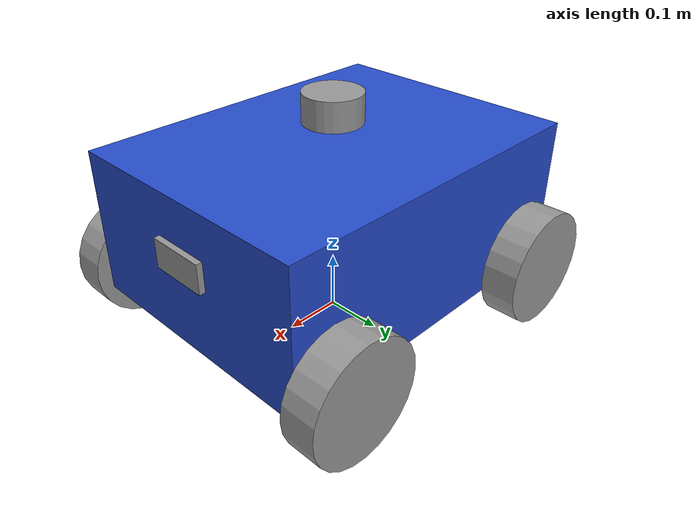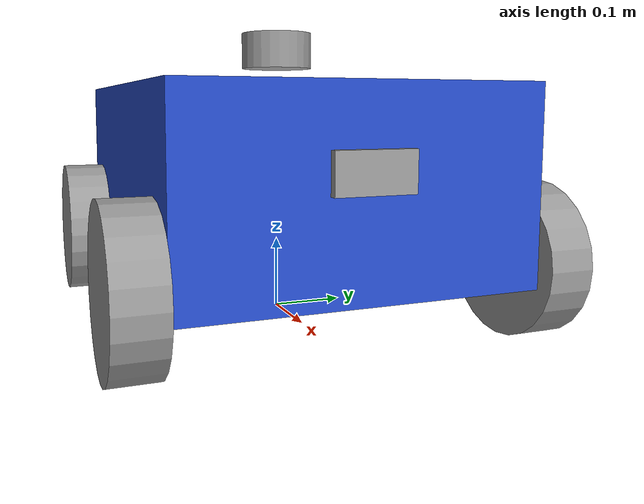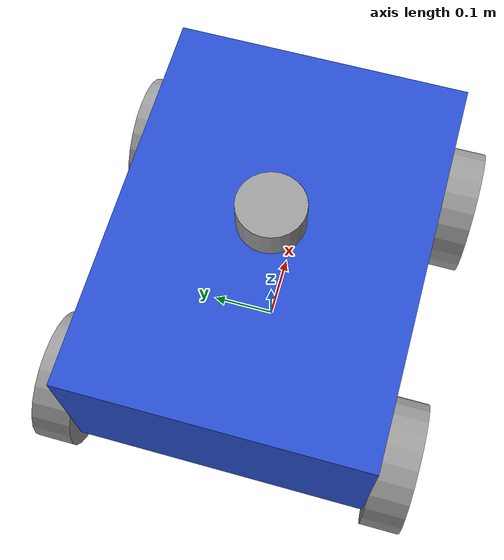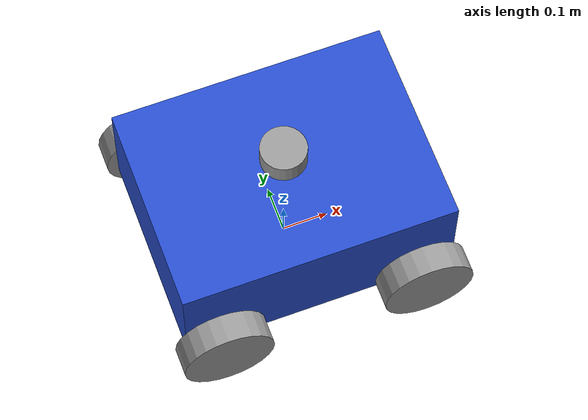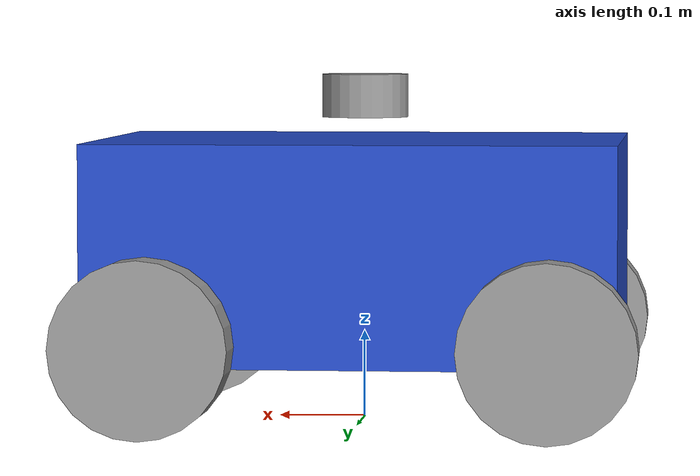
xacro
<?xml version="1.0"?>
<robot name="zippy" xmlns:xacro="https://www.ros.org/wiki/xacro">

    <xacro:arg name="controllers_config_path" default="" />

    <xacro:include filename="materials.xacro" />
    <xacro:include filename="inertia_descriptions.xacro" />
    <xacro:include filename="camera.xacro" />
    <xacro:include filename="lidar.xacro" />
    <xacro:include filename="imu_sensor.xacro" />
    <xacro:include filename="gazebo_plugin.xacro" />
    <xacro:include filename="ros2_hardwareinterface.xacro" />

    <xacro:property name="chassis_length" value="0.6" />
    <xacro:property name="chassis_width" value="0.45" />
    <xacro:property name="chassis_height" value="0.25" />
    <xacro:property name="chassis_mass" value="5.0" />

    <xacro:property name="wheel_radius" value="0.1" />
    <xacro:property name="wheel_thickness" value="0.06" />
    <xacro:property name="wheel_mass" value="0.25" />

    <!-- Distance between left/right wheel centers and front/rear wheel centers -->
    <xacro:property name="track_width" value="0.51" />
    <xacro:property name="wheelbase" value="0.45" />

    <!-- Height of the chassis center above the ground (wheel axle height) -->
    <xacro:property name="chassis_z" value="${wheel_radius}" />

    <link name="zippy">
    </link>
    <link name="base_link">
        <visual>
            <geometry>
                <box size="${chassis_length} ${chassis_width} ${chassis_height}" />
            </geometry>
            <origin xyz="0 0 ${chassis_z}" rpy="0 0 0" />
            <material name="blue" />
        </visual>
        <collision>
            <geometry>
                <box size="${chassis_length} ${chassis_width} ${chassis_height}" />
            </geometry>
            <origin xyz="0 0 ${chassis_z}" rpy="0 0 0" />
        </collision>
        <xacro:box_inertia Mass="${chassis_mass}" x="${chassis_length}" y="${chassis_width}" z="${chassis_height}" arr_xyz="0 0 ${chassis_z}" arr_rpy="0 0 0" />
    </link>

    <xacro:macro name="wheel" params="params">
        <link name="${params}">
            <visual>
                <geometry>
                    <cylinder radius="${wheel_radius}" length="${wheel_thickness}" />
                </geometry>
                <origin xyz="0 0 0" rpy="${pi/2} 0 0"/>
                <material name="grey"/>
            </visual>
            <collision>
                <geometry>
                    <sphere radius="${wheel_radius}"/>
                </geometry>
                <origin xyz="0 0 0" rpy="${pi/2} 0 0"/>
            </collision>
            <xacro:cylinder_inertia Mass="${wheel_mass}" r="${wheel_radius}" h="${wheel_thickness}" arr_xyz="0 0 0" arr_rpy="${pi/2} 0 0"/>
        </link>
    </xacro:macro>

    <xacro:wheel params="front_left_wheel" />
    <xacro:wheel params="front_right_wheel" />
    <xacro:wheel params="rear_left_wheel" />
    <xacro:wheel params="rear_right_wheel" />

    <joint name="base_frontleft_wheel_joint" type="continuous">
        <parent link="base_link"/>
        <child link="front_left_wheel"/>
        <origin xyz="${wheelbase/2} ${track_width/2} 0" rpy="0 0 0"/>
        <axis xyz="0 1 0"/>
    </joint>

    <joint name="base_frontright_wheel_joint" type="continuous">
        <parent link="base_link"/>
        <child link="front_right_wheel"/>
        <origin xyz="${wheelbase/2} ${-track_width/2} 0" rpy="0 0 0"/>
        <axis xyz="0 1 0"/>
    </joint>

    <joint name="base_rearleft_wheel_joint" type="continuous">
        <parent link="base_link"/>
        <child link="rear_left_wheel"/>
        <origin xyz="${-wheelbase/2} ${track_width/2} 0" rpy="0 0 0"/>
        <axis xyz="0 1 0"/>
    </joint>

    <joint name="base_rearright_wheel_joint" type="continuous">
        <parent link="base_link"/>
        <child link="rear_right_wheel"/>
        <origin xyz="${-wheelbase/2} ${-track_width/2} 0" rpy="0 0 0"/>
        <axis xyz="0 1 0"/>
    </joint>

    <joint name="spine" type="fixed">
        <parent link="zippy"/>
        <child link="base_link"/>
        <origin xyz="0 0 ${chassis_z}" rpy="0 0 0"/>
    </joint>

    <xacro:macro name="wheel_friction" params="link">
        <gazebo reference="${link}">
            <mu1>1000000000000000.0</mu1>
            <mu2>1000000000000000.0</mu2>
            <kp>1000000000000.0</kp>
            <kd>10.0</kd>
            <minDepth>0.001</minDepth>
            <maxVel>0.1</maxVel>
            <fdir1>1 0 0</fdir1>
        </gazebo>
    </xacro:macro>

    <xacro:wheel_friction link="front_left_wheel" />
    <xacro:wheel_friction link="front_right_wheel" />
    <xacro:wheel_friction link="rear_left_wheel" />
    <xacro:wheel_friction link="rear_right_wheel" />

    <gazebo>
        <plugin filename="gz_ros2_control-system" name="gz_ros2_control::GazeboSimROS2ControlPlugin">
            <parameters>$(arg controllers_config_path)</parameters>
        </plugin>
    </gazebo>

</robot>

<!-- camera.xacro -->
<robot xmlns:xacro="http://www.ros.org/wiki/xacro">

    <xacro:property name="camera_length" value="0.01" />
    <xacro:property name="camera_width" value="0.1" />
    <xacro:property name="camera_height" value="0.05" />

    <link name="camera_link">
        <visual>
            <geometry>
                <box size="${camera_length} ${camera_width} ${camera_height}" />
            </geometry>
            <material name="grey" />
        </visual>
        <collision>
            <geometry>
                <box size="${camera_length} ${camera_width} ${camera_height}" />
            </geometry>
        </collision>
        <xacro:box_inertia Mass="0.1" x="${camera_length}" y="${camera_width}" z="${camera_height}"
                           arr_xyz="0 0 0" arr_rpy="0 0 0" />
    </link>

    <joint name="base_camera_joint" type="fixed">
        <parent link="base_link" />
        <child link="camera_link" />
        <origin xyz="${(0.6 + camera_length) / 2.0} 0 ${0.25 / 2.0}" rpy="0 0 0" />
    </joint>

    <link name="camera_link_optical" />

    <joint name="camera_optical_joint" type="fixed">
        <origin xyz="0 0 0" rpy="${-pi/2} 0 ${-pi/2}"/>
        <parent link="camera_link"/>
        <child link="camera_link_optical"/>
    </joint>

    <gazebo reference="camera_link">
        <sensor name="camera" type="camera">
            <camera>
                <horizontal_fov>1.3962634</horizontal_fov>
                <image>
                    <width>640</width>
                    <height>480</height>
                    <format>R8G8B8</format>
                </image>
                <clip>
                    <near>0.1</near>
                    <far>15</far>
                </clip>
                <noise>
                    <type>gaussian</type>
                    <mean>0.0</mean>
                    <stddev>0.007</stddev>
                </noise>
                <optical_frame_id>camera_link_optical</optical_frame_id>
                <camera_info_topic>camera/camera_info</camera_info_topic>
            </camera>
            <always_on>1</always_on>
            <update_rate>20</update_rate>
            <visualize>true</visualize>
            <topic>camera/image_raw</topic>
        </sensor>
    </gazebo>

</robot>

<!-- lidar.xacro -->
<robot xmlns:xacro="http://www.ros.org/wiki/xacro">

    <xacro:property name="lidar_radius" value="0.05" />
    <xacro:property name="lidar_height" value="0.05" />

    <link name="lidar_link">
        <visual>
            <geometry>
                <cylinder radius="${lidar_radius}" length="${lidar_height}" />
            </geometry>
            <origin xyz="0 0 0" rpy="0 0 0"/>
            <material name="grey" />
        </visual>
        <collision>
            <geometry>
                <cylinder radius="${lidar_radius}" length="${lidar_height}" />
            </geometry>
            <origin xyz="0 0 0" rpy="0 0 0"/>
        </collision>
        <xacro:cylinder_inertia Mass="0.1" r="${lidar_radius}" h="${lidar_height}" arr_xyz="0 0 0" arr_rpy="0 0 0"/>
    </link>

    <joint name="base_lidar_joint" type="fixed">
        <parent link="base_link" />
        <child link="lidar_link" />
        <origin xyz="0 0 ${0.25 + (lidar_height) / 2.0}" rpy="0 0 0" />
    </joint>

    <link name="lidar_link_optical"/>

    <joint name="lidar_optical_joint" type="fixed">
        <parent link="lidar_link"/>
        <child link="lidar_link_optical"/>
        <origin xyz="0 0 0" rpy="0 0 0"/>
    </joint>

    <gazebo reference="lidar_link">
        <sensor name="lidar" type="gpu_ray">
            <always_on>true</always_on>
            <update_rate>10</update_rate>
            <visualize>true</visualize>
            <gz_frame_id>lidar_link_optical</gz_frame_id>
            <topic>scan</topic>

            <ray>
                <scan>
                    <horizontal>
                    <samples>360</samples>
                    <resolution>1</resolution>
                    <min_angle>-3.14159</min_angle>
                    <max_angle>3.14159</max_angle>
                    </horizontal>
                </scan>

                <range>
                    <min>0.12</min>
                    <max>12.0</max>
                    <resolution>0.01</resolution>
                </range>

                <noise>
                    <type>gaussian</type>
                    <mean>0.0</mean>
                    <stddev>0.01</stddev>
                </noise>
            </ray>

        </sensor>
    </gazebo>

</robot>

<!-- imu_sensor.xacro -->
<robot xmlns:xacro="http://www.ros.org/wiki/xacro">

    <xacro:property name="imu_length" value="0.01" />
    <xacro:property name="imu_width" value="0.01" />
    <xacro:property name="imu_height" value="0.001" />

    <link name="imu_link">
        <visual>
            <geometry>
                <box size="${imu_length} ${imu_width} ${imu_height}" />
            </geometry>
            <origin xyz="0 0 0" rpy="0 0 0"/>
            <material name="grey" />
        </visual>
        <collision>
            <geometry>
                <box size="${imu_length} ${imu_width} ${imu_height}" />
            </geometry>
            <origin xyz="0 0 0" rpy="0 0 0"/>
        </collision>
        <xacro:box_inertia Mass="0.01" x="${imu_length}" y="${imu_width}" z="${imu_height}" arr_xyz="0 0 0" arr_rpy="0 0 0"/>
    </link>

    <joint name="base_imu_joint" type="fixed">
        <parent link="base_link" />
        <child link="imu_link" />
        <origin xyz="0 0 ${0.25 + (imu_height)}" rpy="0 0 0" />
    </joint>

    <gazebo reference="imu_link">
        <sensor name="imu" type="imu">
            <always_on>true</always_on>
            <update_rate>100</update_rate>
            <gz_frame_id>imu_link</gz_frame_id>
            <topic>imu</topic>
            <imu>
                <angular_velocity>
                    <x>
                        <noise type="gaussian">
                            <mean>0.0</mean>
                            <stddev>2e-4</stddev>
                        </noise>
                    </x>
                    <y>
                        <noise type="gaussian">
                            <mean>0.0</mean>
                            <stddev>2e-4</stddev>
                        </noise>
                    </y>
                    <z>
                        <noise type="gaussian">
                            <mean>0.0</mean>
                            <stddev>2e-4</stddev>
                        </noise>
                    </z>
                </angular_velocity>
                <linear_acceleration>
                    <x>
                        <noise type="gaussian">
                            <mean>0.0</mean>
                            <stddev>1.7e-2</stddev>
                        </noise>
                    </x>
                    <y>
                        <noise type="gaussian">
                            <mean>0.0</mean>
                            <stddev>1.7e-2</stddev>
                        </noise>
                    </y>
                    <z>
                        <noise type="gaussian">
                            <mean>0.0</mean>
                            <stddev>1.7e-2</stddev>
                        </noise>
                    </z>
                </linear_acceleration>
            </imu>
        </sensor>
    </gazebo>

</robot>
